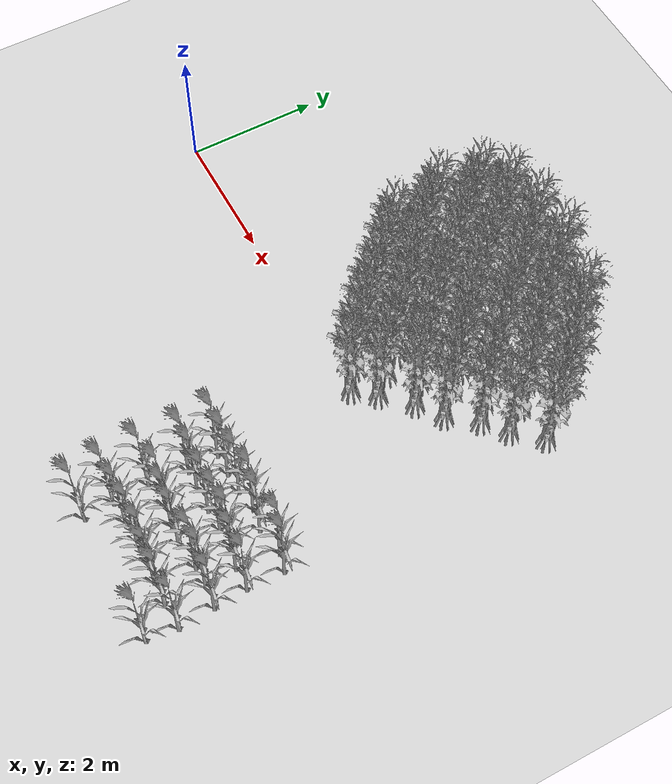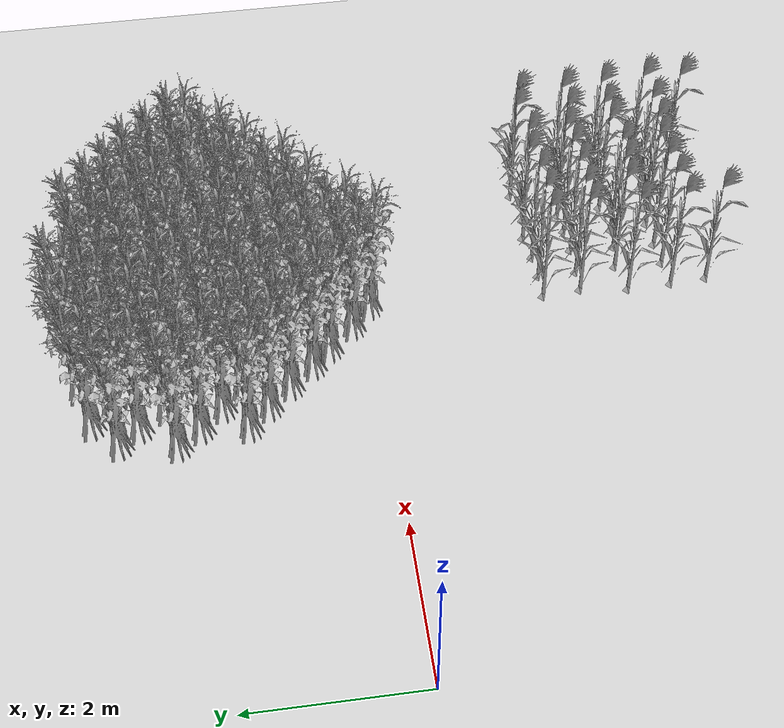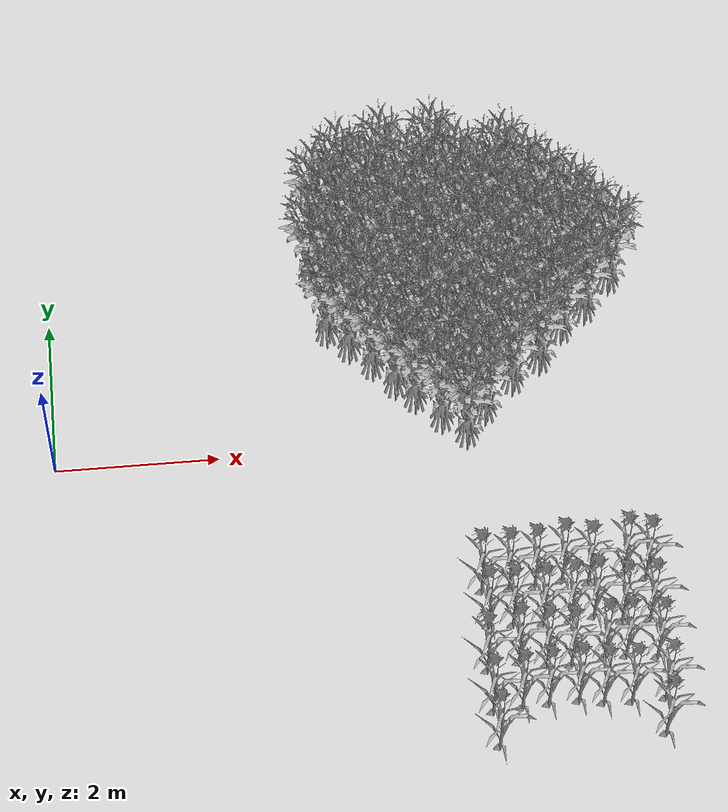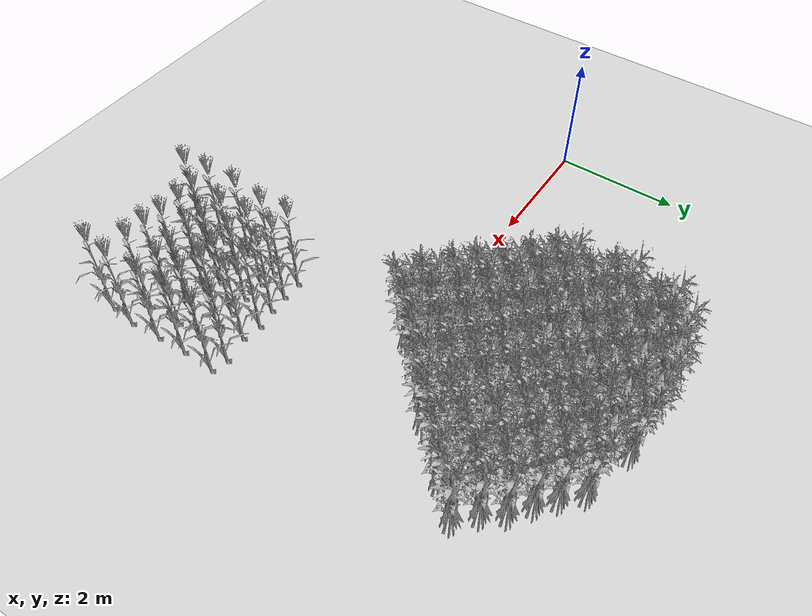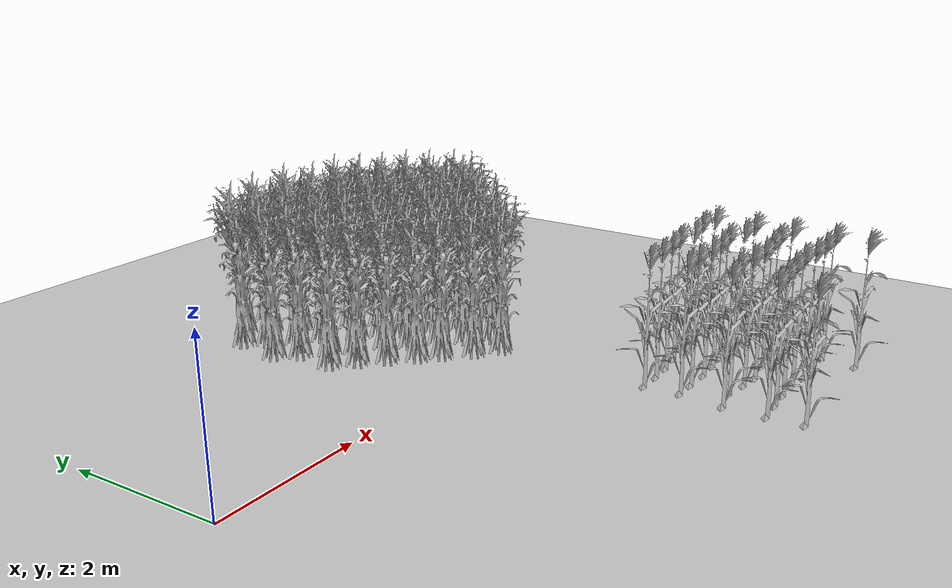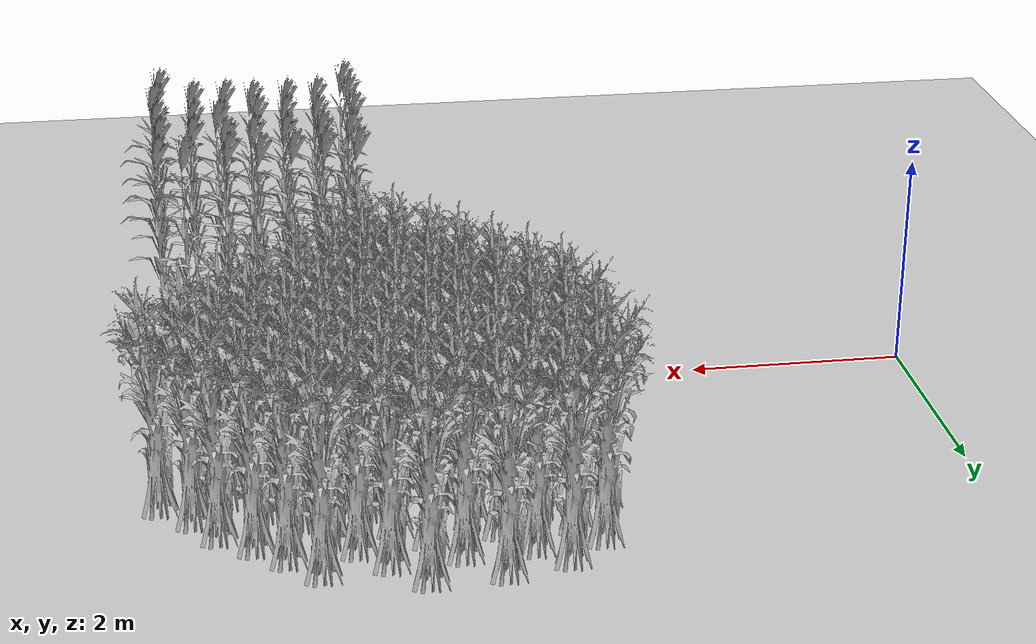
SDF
<sdf version="1.7">
 <world name="farmland_world">
  <model name="ground_plane">
   <static>1</static>
   <link name="link">
    <collision name="collision">
     <geometry><plane><normal>0 0 1</normal><size>40.0 40.0</size></plane></geometry>
     <surface><friction><ode><mu>100</mu><mu2>50</mu2></ode></friction></surface>
    </collision>
    <visual name="visual">
     <cast_shadows>0</cast_shadows>
     <geometry><plane><normal>0 0 1</normal><size>40.0 40.0</size></plane></geometry>
     <material>
      <script><uri>file://media/materials/scripts/gazebo.material</uri><name>Gazebo/Grey</name></script>
     </material>
    </visual>
   </link>
  </model>
  <model name="tree_2_0">
   <static>1</static>
   <link name="link">
    <collision name="collision">
     <geometry><mesh><uri>model://Corn/corn_5p.obj</uri><scale>1 1 1</scale></mesh></geometry>
     <surface><friction><ode><mu>100</mu><mu2>50</mu2></ode></friction></surface>
    </collision>
    <visual name="visual">
     <geometry><mesh><uri>model://Corn/corn_5p.obj</uri><scale>1 1 1</scale></mesh></geometry>
    </visual>
   </link>
   <pose>5.043748606266506 0.012698637609376352 0 0 0 0</pose>
  </model>
  <model name="tree_2_1">
   <static>1</static>
   <link name="link">
    <collision name="collision">
     <geometry><mesh><uri>model://Corn/corn_5p.obj</uri><scale>1 1 1</scale></mesh></geometry>
     <surface><friction><ode><mu>100</mu><mu2>50</mu2></ode></friction></surface>
    </collision>
    <visual name="visual">
     <geometry><mesh><uri>model://Corn/corn_5p.obj</uri><scale>1 1 1</scale></mesh></geometry>
    </visual>
   </link>
   <pose>4.75956731364243 0.24568094177987185 0 0 0 0</pose>
  </model>
  <model name="tree_2_2">
   <static>1</static>
   <link name="link">
    <collision name="collision">
     <geometry><mesh><uri>model://Corn/corn_5p.obj</uri><scale>1 1 1</scale></mesh></geometry>
     <surface><friction><ode><mu>100</mu><mu2>50</mu2></ode></friction></surface>
    </collision>
    <visual name="visual">
     <geometry><mesh><uri>model://Corn/corn_5p.obj</uri><scale>1 1 1</scale></mesh></geometry>
    </visual>
   </link>
   <pose>4.460421943026819 0.5468915827871715 0 0 0 0</pose>
  </model>
  <model name="tree_2_3">
   <static>1</static>
   <link name="link">
    <collision name="collision">
     <geometry><mesh><uri>model://Corn/corn_5p.obj</uri><scale>1 1 1</scale></mesh></geometry>
     <surface><friction><ode><mu>100</mu><mu2>50</mu2></ode></friction></surface>
    </collision>
    <visual name="visual">
     <geometry><mesh><uri>model://Corn/corn_5p.obj</uri><scale>1 1 1</scale></mesh></geometry>
    </visual>
   </link>
   <pose>4.231845531452798 0.7637563604710286 0 0 0 0</pose>
  </model>
  <model name="tree_2_4">
   <static>1</static>
   <link name="link">
    <collision name="collision">
     <geometry><mesh><uri>model://Corn/corn_5p.obj</uri><scale>1 1 1</scale></mesh></geometry>
     <surface><friction><ode><mu>100</mu><mu2>50</mu2></ode></friction></surface>
    </collision>
    <visual name="visual">
     <geometry><mesh><uri>model://Corn/corn_5p.obj</uri><scale>1 1 1</scale></mesh></geometry>
    </visual>
   </link>
   <pose>3.976620042952896 1.0468861932850682 0 0 0 0</pose>
  </model>
  <model name="tree_2_5">
   <static>1</static>
   <link name="link">
    <collision name="collision">
     <geometry><mesh><uri>model://Corn/corn_5p.obj</uri><scale>1 1 1</scale></mesh></geometry>
     <surface><friction><ode><mu>100</mu><mu2>50</mu2></ode></friction></surface>
    </collision>
    <visual name="visual">
     <geometry><mesh><uri>model://Corn/corn_5p.obj</uri><scale>1 1 1</scale></mesh></geometry>
    </visual>
   </link>
   <pose>3.7075180982488405 1.313542585969232 0 0 0 0</pose>
  </model>
  <model name="tree_2_6">
   <static>1</static>
   <link name="link">
    <collision name="collision">
     <geometry><mesh><uri>model://Corn/corn_5p.obj</uri><scale>1 1 1</scale></mesh></geometry>
     <surface><friction><ode><mu>100</mu><mu2>50</mu2></ode></friction></surface>
    </collision>
    <visual name="visual">
     <geometry><mesh><uri>model://Corn/corn_5p.obj</uri><scale>1 1 1</scale></mesh></geometry>
    </visual>
   </link>
   <pose>3.4529204111559277 1.5609485227874136 0 0 0 0</pose>
  </model>
  <model name="tree_2_40">
   <static>1</static>
   <link name="link">
    <collision name="collision">
     <geometry><mesh><uri>model://Corn/corn_5p.obj</uri><scale>1 1 1</scale></mesh></geometry>
     <surface><friction><ode><mu>100</mu><mu2>50</mu2></ode></friction></surface>
    </collision>
    <visual name="visual">
     <geometry><mesh><uri>model://Corn/corn_5p.obj</uri><scale>1 1 1</scale></mesh></geometry>
    </visual>
   </link>
   <pose>6.028388113042518 0.9541640676287072 0 0 0 0</pose>
  </model>
  <model name="tree_2_41">
   <static>1</static>
   <link name="link">
    <collision name="collision">
     <geometry><mesh><uri>model://Corn/corn_5p.obj</uri><scale>1 1 1</scale></mesh></geometry>
     <surface><friction><ode><mu>100</mu><mu2>50</mu2></ode></friction></surface>
    </collision>
    <visual name="visual">
     <geometry><mesh><uri>model://Corn/corn_5p.obj</uri><scale>1 1 1</scale></mesh></geometry>
    </visual>
   </link>
   <pose>5.696229317378388 1.2897160327841732 0 0 0 0</pose>
  </model>
  <model name="tree_2_42">
   <static>1</static>
   <link name="link">
    <collision name="collision">
     <geometry><mesh><uri>model://Corn/corn_5p.obj</uri><scale>1 1 1</scale></mesh></geometry>
     <surface><friction><ode><mu>100</mu><mu2>50</mu2></ode></friction></surface>
    </collision>
    <visual name="visual">
     <geometry><mesh><uri>model://Corn/corn_5p.obj</uri><scale>1 1 1</scale></mesh></geometry>
    </visual>
   </link>
   <pose>5.504497775282919 1.5190798610110132 0 0 0 0</pose>
  </model>
  <model name="tree_2_43">
   <static>1</static>
   <link name="link">
    <collision name="collision">
     <geometry><mesh><uri>model://Corn/corn_5p.obj</uri><scale>1 1 1</scale></mesh></geometry>
     <surface><friction><ode><mu>100</mu><mu2>50</mu2></ode></friction></surface>
    </collision>
    <visual name="visual">
     <geometry><mesh><uri>model://Corn/corn_5p.obj</uri><scale>1 1 1</scale></mesh></geometry>
    </visual>
   </link>
   <pose>5.23853396785096 1.7368655205092516 0 0 0 0</pose>
  </model>
  <model name="tree_2_44">
   <static>1</static>
   <link name="link">
    <collision name="collision">
     <geometry><mesh><uri>model://Corn/corn_5p.obj</uri><scale>1 1 1</scale></mesh></geometry>
     <surface><friction><ode><mu>100</mu><mu2>50</mu2></ode></friction></surface>
    </collision>
    <visual name="visual">
     <geometry><mesh><uri>model://Corn/corn_5p.obj</uri><scale>1 1 1</scale></mesh></geometry>
    </visual>
   </link>
   <pose>4.971205356184604 1.987103195072003 0 0 0 0</pose>
  </model>
  <model name="tree_2_45">
   <static>1</static>
   <link name="link">
    <collision name="collision">
     <geometry><mesh><uri>model://Corn/corn_5p.obj</uri><scale>1 1 1</scale></mesh></geometry>
     <surface><friction><ode><mu>100</mu><mu2>50</mu2></ode></friction></surface>
    </collision>
    <visual name="visual">
     <geometry><mesh><uri>model://Corn/corn_5p.obj</uri><scale>1 1 1</scale></mesh></geometry>
    </visual>
   </link>
   <pose>4.678248088656121 2.255392209830677 0 0 0 0</pose>
  </model>
  <model name="tree_2_46">
   <static>1</static>
   <link name="link">
    <collision name="collision">
     <geometry><mesh><uri>model://Corn/corn_5p.obj</uri><scale>1 1 1</scale></mesh></geometry>
     <surface><friction><ode><mu>100</mu><mu2>50</mu2></ode></friction></surface>
    </collision>
    <visual name="visual">
     <geometry><mesh><uri>model://Corn/corn_5p.obj</uri><scale>1 1 1</scale></mesh></geometry>
    </visual>
   </link>
   <pose>4.453038371911183 2.5605945778936716 0 0 0 0</pose>
  </model>
  <model name="tree_2_47">
   <static>1</static>
   <link name="link">
    <collision name="collision">
     <geometry><mesh><uri>model://Corn/corn_5p.obj</uri><scale>1 1 1</scale></mesh></geometry>
     <surface><friction><ode><mu>100</mu><mu2>50</mu2></ode></friction></surface>
    </collision>
    <visual name="visual">
     <geometry><mesh><uri>model://Corn/corn_5p.obj</uri><scale>1 1 1</scale></mesh></geometry>
    </visual>
   </link>
   <pose>4.238533251155412 2.7592199334929988 0 0 0 0</pose>
  </model>
  <model name="tree_2_48">
   <static>1</static>
   <link name="link">
    <collision name="collision">
     <geometry><mesh><uri>model://Corn/corn_5p.obj</uri><scale>1 1 1</scale></mesh></geometry>
     <surface><friction><ode><mu>100</mu><mu2>50</mu2></ode></friction></surface>
    </collision>
    <visual name="visual">
     <geometry><mesh><uri>model://Corn/corn_5p.obj</uri><scale>1 1 1</scale></mesh></geometry>
    </visual>
   </link>
   <pose>3.9837428285086616 3.0683633686979657 0 0 0 0</pose>
  </model>
  <model name="tree_2_49">
   <static>1</static>
   <link name="link">
    <collision name="collision">
     <geometry><mesh><uri>model://Corn/corn_5p.obj</uri><scale>1 1 1</scale></mesh></geometry>
     <surface><friction><ode><mu>100</mu><mu2>50</mu2></ode></friction></surface>
    </collision>
    <visual name="visual">
     <geometry><mesh><uri>model://Corn/corn_5p.obj</uri><scale>1 1 1</scale></mesh></geometry>
    </visual>
   </link>
   <pose>3.726110100726963 3.2937605684750215 0 0 0 0</pose>
  </model>
  <model name="tree_2_80">
   <static>1</static>
   <link name="link">
    <collision name="collision">
     <geometry><mesh><uri>model://Corn/corn_5p.obj</uri><scale>1 1 1</scale></mesh></geometry>
     <surface><friction><ode><mu>100</mu><mu2>50</mu2></ode></friction></surface>
    </collision>
    <visual name="visual">
     <geometry><mesh><uri>model://Corn/corn_5p.obj</uri><scale>1 1 1</scale></mesh></geometry>
    </visual>
   </link>
   <pose>7.000657069994379 2.0129936857948634 0 0 0 0</pose>
  </model>
  <model name="tree_2_81">
   <static>1</static>
   <link name="link">
    <collision name="collision">
     <geometry><mesh><uri>model://Corn/corn_5p.obj</uri><scale>1 1 1</scale></mesh></geometry>
     <surface><friction><ode><mu>100</mu><mu2>50</mu2></ode></friction></surface>
    </collision>
    <visual name="visual">
     <geometry><mesh><uri>model://Corn/corn_5p.obj</uri><scale>1 1 1</scale></mesh></geometry>
    </visual>
   </link>
   <pose>6.722198239006003 2.2701727378516168 0 0 0 0</pose>
  </model>
  <model name="tree_2_82">
   <static>1</static>
   <link name="link">
    <collision name="collision">
     <geometry><mesh><uri>model://Corn/corn_5p.obj</uri><scale>1 1 1</scale></mesh></geometry>
     <surface><friction><ode><mu>100</mu><mu2>50</mu2></ode></friction></surface>
    </collision>
    <visual name="visual">
     <geometry><mesh><uri>model://Corn/corn_5p.obj</uri><scale>1 1 1</scale></mesh></geometry>
    </visual>
   </link>
   <pose>6.520718323070337 2.548804115384206 0 0 0 0</pose>
  </model>
  <model name="tree_2_83">
   <static>1</static>
   <link name="link">
    <collision name="collision">
     <geometry><mesh><uri>model://Corn/corn_5p.obj</uri><scale>1 1 1</scale></mesh></geometry>
     <surface><friction><ode><mu>100</mu><mu2>50</mu2></ode></friction></surface>
    </collision>
    <visual name="visual">
     <geometry><mesh><uri>model://Corn/corn_5p.obj</uri><scale>1 1 1</scale></mesh></geometry>
    </visual>
   </link>
   <pose>6.2324708124007 2.7638768683860153 0 0 0 0</pose>
  </model>
  <model name="tree_2_84">
   <static>1</static>
   <link name="link">
    <collision name="collision">
     <geometry><mesh><uri>model://Corn/corn_5p.obj</uri><scale>1 1 1</scale></mesh></geometry>
     <surface><friction><ode><mu>100</mu><mu2>50</mu2></ode></friction></surface>
    </collision>
    <visual name="visual">
     <geometry><mesh><uri>model://Corn/corn_5p.obj</uri><scale>1 1 1</scale></mesh></geometry>
    </visual>
   </link>
   <pose>5.979146030354563 2.9835734368422706 0 0 0 0</pose>
  </model>
  <model name="tree_2_85">
   <static>1</static>
   <link name="link">
    <collision name="collision">
     <geometry><mesh><uri>model://Corn/corn_5p.obj</uri><scale>1 1 1</scale></mesh></geometry>
     <surface><friction><ode><mu>100</mu><mu2>50</mu2></ode></friction></surface>
    </collision>
    <visual name="visual">
     <geometry><mesh><uri>model://Corn/corn_5p.obj</uri><scale>1 1 1</scale></mesh></geometry>
    </visual>
   </link>
   <pose>5.718983313373528 3.244093634182256 0 0 0 0</pose>
  </model>
  <model name="tree_2_240">
   <static>1</static>
   <link name="link">
    <collision name="collision">
     <geometry><mesh><uri>model://Corn/corn_5p.obj</uri><scale>1 1 1</scale></mesh></geometry>
     <surface><friction><ode><mu>100</mu><mu2>50</mu2></ode></friction></surface>
    </collision>
    <visual name="visual">
     <geometry><mesh><uri>model://Corn/corn_5p.obj</uri><scale>1 1 1</scale></mesh></geometry>
    </visual>
   </link>
   <pose>5.294942314268361 0.31436960165316447 0 0 0 0</pose>
  </model>
  <model name="tree_2_241">
   <static>1</static>
   <link name="link">
    <collision name="collision">
     <geometry><mesh><uri>model://Corn/corn_5p.obj</uri><scale>1 1 1</scale></mesh></geometry>
     <surface><friction><ode><mu>100</mu><mu2>50</mu2></ode></friction></surface>
    </collision>
    <visual name="visual">
     <geometry><mesh><uri>model://Corn/corn_5p.obj</uri><scale>1 1 1</scale></mesh></geometry>
    </visual>
   </link>
   <pose>5.060643168754194 0.5886856260967881 0 0 0 0</pose>
  </model>
  <model name="tree_2_242">
   <static>1</static>
   <link name="link">
    <collision name="collision">
     <geometry><mesh><uri>model://Corn/corn_5p.obj</uri><scale>1 1 1</scale></mesh></geometry>
     <surface><friction><ode><mu>100</mu><mu2>50</mu2></ode></friction></surface>
    </collision>
    <visual name="visual">
     <geometry><mesh><uri>model://Corn/corn_5p.obj</uri><scale>1 1 1</scale></mesh></geometry>
    </visual>
   </link>
   <pose>4.846326087759779 0.8722171995250338 0 0 0 0</pose>
  </model>
  <model name="tree_2_243">
   <static>1</static>
   <link name="link">
    <collision name="collision">
     <geometry><mesh><uri>model://Corn/corn_5p.obj</uri><scale>1 1 1</scale></mesh></geometry>
     <surface><friction><ode><mu>100</mu><mu2>50</mu2></ode></friction></surface>
    </collision>
    <visual name="visual">
     <geometry><mesh><uri>model://Corn/corn_5p.obj</uri><scale>1 1 1</scale></mesh></geometry>
    </visual>
   </link>
   <pose>4.539584951514254 1.119566487913283 0 0 0 0</pose>
  </model>
  <model name="tree_2_244">
   <static>1</static>
   <link name="link">
    <collision name="collision">
     <geometry><mesh><uri>model://Corn/corn_5p.obj</uri><scale>1 1 1</scale></mesh></geometry>
     <surface><friction><ode><mu>100</mu><mu2>50</mu2></ode></friction></surface>
    </collision>
    <visual name="visual">
     <geometry><mesh><uri>model://Corn/corn_5p.obj</uri><scale>1 1 1</scale></mesh></geometry>
    </visual>
   </link>
   <pose>4.323568305332126 1.3703721090528371 0 0 0 0</pose>
  </model>
  <model name="tree_2_245">
   <static>1</static>
   <link name="link">
    <collision name="collision">
     <geometry><mesh><uri>model://Corn/corn_5p.obj</uri><scale>1 1 1</scale></mesh></geometry>
     <surface><friction><ode><mu>100</mu><mu2>50</mu2></ode></friction></surface>
    </collision>
    <visual name="visual">
     <geometry><mesh><uri>model://Corn/corn_5p.obj</uri><scale>1 1 1</scale></mesh></geometry>
    </visual>
   </link>
   <pose>3.9986804921635564 1.5987363364715272 0 0 0 0</pose>
  </model>
  <model name="tree_2_246">
   <static>1</static>
   <link name="link">
    <collision name="collision">
     <geometry><mesh><uri>model://Corn/corn_5p.obj</uri><scale>1 1 1</scale></mesh></geometry>
     <surface><friction><ode><mu>100</mu><mu2>50</mu2></ode></friction></surface>
    </collision>
    <visual name="visual">
     <geometry><mesh><uri>model://Corn/corn_5p.obj</uri><scale>1 1 1</scale></mesh></geometry>
    </visual>
   </link>
   <pose>3.765671900892521 1.8306087010937626 0 0 0 0</pose>
  </model>
  <model name="tree_2_247">
   <static>1</static>
   <link name="link">
    <collision name="collision">
     <geometry><mesh><uri>model://Corn/corn_5p.obj</uri><scale>1 1 1</scale></mesh></geometry>
     <surface><friction><ode><mu>100</mu><mu2>50</mu2></ode></friction></surface>
    </collision>
    <visual name="visual">
     <geometry><mesh><uri>model://Corn/corn_5p.obj</uri><scale>1 1 1</scale></mesh></geometry>
    </visual>
   </link>
   <pose>3.5021229078996567 2.090846570355696 0 0 0 0</pose>
  </model>
  <model name="tree_2_248">
   <static>1</static>
   <link name="link">
    <collision name="collision">
     <geometry><mesh><uri>model://Corn/corn_5p.obj</uri><scale>1 1 1</scale></mesh></geometry>
     <surface><friction><ode><mu>100</mu><mu2>50</mu2></ode></friction></surface>
    </collision>
    <visual name="visual">
     <geometry><mesh><uri>model://Corn/corn_5p.obj</uri><scale>1 1 1</scale></mesh></geometry>
    </visual>
   </link>
   <pose>3.300474067678995 2.3598108463817495 0 0 0 0</pose>
  </model>
  <model name="tree_2_280">
   <static>1</static>
   <link name="link">
    <collision name="collision">
     <geometry><mesh><uri>model://Corn/corn_5p.obj</uri><scale>1 1 1</scale></mesh></geometry>
     <surface><friction><ode><mu>100</mu><mu2>50</mu2></ode></friction></surface>
    </collision>
    <visual name="visual">
     <geometry><mesh><uri>model://Corn/corn_5p.obj</uri><scale>1 1 1</scale></mesh></geometry>
    </visual>
   </link>
   <pose>5.667108332484155 0.6974977411553743 0 0 0 0</pose>
  </model>
  <model name="tree_2_281">
   <static>1</static>
   <link name="link">
    <collision name="collision">
     <geometry><mesh><uri>model://Corn/corn_5p.obj</uri><scale>1 1 1</scale></mesh></geometry>
     <surface><friction><ode><mu>100</mu><mu2>50</mu2></ode></friction></surface>
    </collision>
    <visual name="visual">
     <geometry><mesh><uri>model://Corn/corn_5p.obj</uri><scale>1 1 1</scale></mesh></geometry>
    </visual>
   </link>
   <pose>5.3913404407985865 0.9206189268846922 0 0 0 0</pose>
  </model>
  <model name="tree_2_282">
   <static>1</static>
   <link name="link">
    <collision name="collision">
     <geometry><mesh><uri>model://Corn/corn_5p.obj</uri><scale>1 1 1</scale></mesh></geometry>
     <surface><friction><ode><mu>100</mu><mu2>50</mu2></ode></friction></surface>
    </collision>
    <visual name="visual">
     <geometry><mesh><uri>model://Corn/corn_5p.obj</uri><scale>1 1 1</scale></mesh></geometry>
    </visual>
   </link>
   <pose>5.12111484447519 1.1529588309792216 0 0 0 0</pose>
  </model>
  <model name="tree_2_283">
   <static>1</static>
   <link name="link">
    <collision name="collision">
     <geometry><mesh><uri>model://Corn/corn_5p.obj</uri><scale>1 1 1</scale></mesh></geometry>
     <surface><friction><ode><mu>100</mu><mu2>50</mu2></ode></friction></surface>
    </collision>
    <visual name="visual">
     <geometry><mesh><uri>model://Corn/corn_5p.obj</uri><scale>1 1 1</scale></mesh></geometry>
    </visual>
   </link>
   <pose>4.852665875639321 1.4787934209805522 0 0 0 0</pose>
  </model>
  <model name="tree_2_284">
   <static>1</static>
   <link name="link">
    <collision name="collision">
     <geometry><mesh><uri>model://Corn/corn_5p.obj</uri><scale>1 1 1</scale></mesh></geometry>
     <surface><friction><ode><mu>100</mu><mu2>50</mu2></ode></friction></surface>
    </collision>
    <visual name="visual">
     <geometry><mesh><uri>model://Corn/corn_5p.obj</uri><scale>1 1 1</scale></mesh></geometry>
    </visual>
   </link>
   <pose>4.616177025690678 1.6770685655986504 0 0 0 0</pose>
  </model>
  <model name="tree_2_285">
   <static>1</static>
   <link name="link">
    <collision name="collision">
     <geometry><mesh><uri>model://Corn/corn_5p.obj</uri><scale>1 1 1</scale></mesh></geometry>
     <surface><friction><ode><mu>100</mu><mu2>50</mu2></ode></friction></surface>
    </collision>
    <visual name="visual">
     <geometry><mesh><uri>model://Corn/corn_5p.obj</uri><scale>1 1 1</scale></mesh></geometry>
    </visual>
   </link>
   <pose>4.39963152732525 1.9070458890389301 0 0 0 0</pose>
  </model>
  <model name="tree_2_286">
   <static>1</static>
   <link name="link">
    <collision name="collision">
     <geometry><mesh><uri>model://Corn/corn_5p.obj</uri><scale>1 1 1</scale></mesh></geometry>
     <surface><friction><ode><mu>100</mu><mu2>50</mu2></ode></friction></surface>
    </collision>
    <visual name="visual">
     <geometry><mesh><uri>model://Corn/corn_5p.obj</uri><scale>1 1 1</scale></mesh></geometry>
    </visual>
   </link>
   <pose>4.107161041302192 2.2521851633689565 0 0 0 0</pose>
  </model>
  <model name="tree_2_287">
   <static>1</static>
   <link name="link">
    <collision name="collision">
     <geometry><mesh><uri>model://Corn/corn_5p.obj</uri><scale>1 1 1</scale></mesh></geometry>
     <surface><friction><ode><mu>100</mu><mu2>50</mu2></ode></friction></surface>
    </collision>
    <visual name="visual">
     <geometry><mesh><uri>model://Corn/corn_5p.obj</uri><scale>1 1 1</scale></mesh></geometry>
    </visual>
   </link>
   <pose>3.8294573832363272 2.4654402592464546 0 0 0 0</pose>
  </model>
  <model name="tree_2_288">
   <static>1</static>
   <link name="link">
    <collision name="collision">
     <geometry><mesh><uri>model://Corn/corn_5p.obj</uri><scale>1 1 1</scale></mesh></geometry>
     <surface><friction><ode><mu>100</mu><mu2>50</mu2></ode></friction></surface>
    </collision>
    <visual name="visual">
     <geometry><mesh><uri>model://Corn/corn_5p.obj</uri><scale>1 1 1</scale></mesh></geometry>
    </visual>
   </link>
   <pose>3.6078658827066348 2.7676525818330338 0 0 0 0</pose>
  </model>
  <model name="tree_2_289">
   <static>1</static>
   <link name="link">
    <collision name="collision">
     <geometry><mesh><uri>model://Corn/corn_5p.obj</uri><scale>1 1 1</scale></mesh></geometry>
     <surface><friction><ode><mu>100</mu><mu2>50</mu2></ode></friction></surface>
    </collision>
    <visual name="visual">
     <geometry><mesh><uri>model://Corn/corn_5p.obj</uri><scale>1 1 1</scale></mesh></geometry>
    </visual>
   </link>
   <pose>3.408005221352631 3.0000669541445704 0 0 0 0</pose>
  </model>
  <model name="tree_2_320">
   <static>1</static>
   <link name="link">
    <collision name="collision">
     <geometry><mesh><uri>model://Corn/corn_5p.obj</uri><scale>1 1 1</scale></mesh></geometry>
     <surface><friction><ode><mu>100</mu><mu2>50</mu2></ode></friction></surface>
    </collision>
    <visual name="visual">
     <geometry><mesh><uri>model://Corn/corn_5p.obj</uri><scale>1 1 1</scale></mesh></geometry>
    </visual>
   </link>
   <pose>6.338366848422433 1.3567166332836473 0 0 0 0</pose>
  </model>
  <model name="tree_2_321">
   <static>1</static>
   <link name="link">
    <collision name="collision">
     <geometry><mesh><uri>model://Corn/corn_5p.obj</uri><scale>1 1 1</scale></mesh></geometry>
     <surface><friction><ode><mu>100</mu><mu2>50</mu2></ode></friction></surface>
    </collision>
    <visual name="visual">
     <geometry><mesh><uri>model://Corn/corn_5p.obj</uri><scale>1 1 1</scale></mesh></geometry>
    </visual>
   </link>
   <pose>6.109718337755973 1.548137722534008 0 0 0 0</pose>
  </model>
  <model name="tree_2_322">
   <static>1</static>
   <link name="link">
    <collision name="collision">
     <geometry><mesh><uri>model://Corn/corn_5p.obj</uri><scale>1 1 1</scale></mesh></geometry>
     <surface><friction><ode><mu>100</mu><mu2>50</mu2></ode></friction></surface>
    </collision>
    <visual name="visual">
     <geometry><mesh><uri>model://Corn/corn_5p.obj</uri><scale>1 1 1</scale></mesh></geometry>
    </visual>
   </link>
   <pose>5.804855446969796 1.8550329044415614 0 0 0 0</pose>
  </model>
  <model name="tree_2_323">
   <static>1</static>
   <link name="link">
    <collision name="collision">
     <geometry><mesh><uri>model://Corn/corn_5p.obj</uri><scale>1 1 1</scale></mesh></geometry>
     <surface><friction><ode><mu>100</mu><mu2>50</mu2></ode></friction></surface>
    </collision>
    <visual name="visual">
     <geometry><mesh><uri>model://Corn/corn_5p.obj</uri><scale>1 1 1</scale></mesh></geometry>
    </visual>
   </link>
   <pose>5.527362585658667 2.1336716175333494 0 0 0 0</pose>
  </model>
  <model name="tree_2_324">
   <static>1</static>
   <link name="link">
    <collision name="collision">
     <geometry><mesh><uri>model://Corn/corn_5p.obj</uri><scale>1 1 1</scale></mesh></geometry>
     <surface><friction><ode><mu>100</mu><mu2>50</mu2></ode></friction></surface>
    </collision>
    <visual name="visual">
     <geometry><mesh><uri>model://Corn/corn_5p.obj</uri><scale>1 1 1</scale></mesh></geometry>
    </visual>
   </link>
   <pose>5.284451715257927 2.320411741051827 0 0 0 0</pose>
  </model>
  <model name="tree_2_325">
   <static>1</static>
   <link name="link">
    <collision name="collision">
     <geometry><mesh><uri>model://Corn/corn_5p.obj</uri><scale>1 1 1</scale></mesh></geometry>
     <surface><friction><ode><mu>100</mu><mu2>50</mu2></ode></friction></surface>
    </collision>
    <visual name="visual">
     <geometry><mesh><uri>model://Corn/corn_5p.obj</uri><scale>1 1 1</scale></mesh></geometry>
    </visual>
   </link>
   <pose>5.090658463351722 2.6120011895682183 0 0 0 0</pose>
  </model>
  <model name="tree_2_326">
   <static>1</static>
   <link name="link">
    <collision name="collision">
     <geometry><mesh><uri>model://Corn/corn_5p.obj</uri><scale>1 1 1</scale></mesh></geometry>
     <surface><friction><ode><mu>100</mu><mu2>50</mu2></ode></friction></surface>
    </collision>
    <visual name="visual">
     <geometry><mesh><uri>model://Corn/corn_5p.obj</uri><scale>1 1 1</scale></mesh></geometry>
    </visual>
   </link>
   <pose>4.820132134440604 2.835811972435247 0 0 0 0</pose>
  </model>
  <model name="tree_2_327">
   <static>1</static>
   <link name="link">
    <collision name="collision">
     <geometry><mesh><uri>model://Corn/corn_5p.obj</uri><scale>1 1 1</scale></mesh></geometry>
     <surface><friction><ode><mu>100</mu><mu2>50</mu2></ode></friction></surface>
    </collision>
    <visual name="visual">
     <geometry><mesh><uri>model://Corn/corn_5p.obj</uri><scale>1 1 1</scale></mesh></geometry>
    </visual>
   </link>
   <pose>4.566834726818778 3.0993835119419706 0 0 0 0</pose>
  </model>
  <model name="tree_2_328">
   <static>1</static>
   <link name="link">
    <collision name="collision">
     <geometry><mesh><uri>model://Corn/corn_5p.obj</uri><scale>1 1 1</scale></mesh></geometry>
     <surface><friction><ode><mu>100</mu><mu2>50</mu2></ode></friction></surface>
    </collision>
    <visual name="visual">
     <geometry><mesh><uri>model://Corn/corn_5p.obj</uri><scale>1 1 1</scale></mesh></geometry>
    </visual>
   </link>
   <pose>4.25996314306833 3.428421218835945 0 0 0 0</pose>
  </model>
  <model name="tree_2_360">
   <static>1</static>
   <link name="link">
    <collision name="collision">
     <geometry><mesh><uri>model://Corn/corn_5p.obj</uri><scale>1 1 1</scale></mesh></geometry>
     <surface><friction><ode><mu>100</mu><mu2>50</mu2></ode></friction></surface>
    </collision>
    <visual name="visual">
     <geometry><mesh><uri>model://Corn/corn_5p.obj</uri><scale>1 1 1</scale></mesh></geometry>
    </visual>
   </link>
   <pose>6.660918116592317 1.6234294312931281 0 0 0 0</pose>
  </model>
  <model name="tree_2_361">
   <static>1</static>
   <link name="link">
    <collision name="collision">
     <geometry><mesh><uri>model://Corn/corn_5p.obj</uri><scale>1 1 1</scale></mesh></geometry>
     <surface><friction><ode><mu>100</mu><mu2>50</mu2></ode></friction></surface>
    </collision>
    <visual name="visual">
     <geometry><mesh><uri>model://Corn/corn_5p.obj</uri><scale>1 1 1</scale></mesh></geometry>
    </visual>
   </link>
   <pose>6.420403535258286 1.9697698368653869 0 0 0 0</pose>
  </model>
  <model name="tree_2_362">
   <static>1</static>
   <link name="link">
    <collision name="collision">
     <geometry><mesh><uri>model://Corn/corn_5p.obj</uri><scale>1 1 1</scale></mesh></geometry>
     <surface><friction><ode><mu>100</mu><mu2>50</mu2></ode></friction></surface>
    </collision>
    <visual name="visual">
     <geometry><mesh><uri>model://Corn/corn_5p.obj</uri><scale>1 1 1</scale></mesh></geometry>
    </visual>
   </link>
   <pose>6.137232644408174 2.226399194983378 0 0 0 0</pose>
  </model>
  <model name="tree_2_363">
   <static>1</static>
   <link name="link">
    <collision name="collision">
     <geometry><mesh><uri>model://Corn/corn_5p.obj</uri><scale>1 1 1</scale></mesh></geometry>
     <surface><friction><ode><mu>100</mu><mu2>50</mu2></ode></friction></surface>
    </collision>
    <visual name="visual">
     <geometry><mesh><uri>model://Corn/corn_5p.obj</uri><scale>1 1 1</scale></mesh></geometry>
    </visual>
   </link>
   <pose>5.851221818484744 2.415714833125657 0 0 0 0</pose>
  </model>
  <model name="tree_2_364">
   <static>1</static>
   <link name="link">
    <collision name="collision">
     <geometry><mesh><uri>model://Corn/corn_5p.obj</uri><scale>1 1 1</scale></mesh></geometry>
     <surface><friction><ode><mu>100</mu><mu2>50</mu2></ode></friction></surface>
    </collision>
    <visual name="visual">
     <geometry><mesh><uri>model://Corn/corn_5p.obj</uri><scale>1 1 1</scale></mesh></geometry>
    </visual>
   </link>
   <pose>5.614772119637968 2.7185830122441828 0 0 0 0</pose>
  </model>
  <model name="tree_2_365">
   <static>1</static>
   <link name="link">
    <collision name="collision">
     <geometry><mesh><uri>model://Corn/corn_5p.obj</uri><scale>1 1 1</scale></mesh></geometry>
     <surface><friction><ode><mu>100</mu><mu2>50</mu2></ode></friction></surface>
    </collision>
    <visual name="visual">
     <geometry><mesh><uri>model://Corn/corn_5p.obj</uri><scale>1 1 1</scale></mesh></geometry>
    </visual>
   </link>
   <pose>5.409289091633081 2.9130804077189945 0 0 0 0</pose>
  </model>
  <model name="tree_2_366">
   <static>1</static>
   <link name="link">
    <collision name="collision">
     <geometry><mesh><uri>model://Corn/corn_5p.obj</uri><scale>1 1 1</scale></mesh></geometry>
     <surface><friction><ode><mu>100</mu><mu2>50</mu2></ode></friction></surface>
    </collision>
    <visual name="visual">
     <geometry><mesh><uri>model://Corn/corn_5p.obj</uri><scale>1 1 1</scale></mesh></geometry>
    </visual>
   </link>
   <pose>5.169114488179237 3.162700331285592 0 0 0 0</pose>
  </model>
  <model name="tree_2_367">
   <static>1</static>
   <link name="link">
    <collision name="collision">
     <geometry><mesh><uri>model://Corn/corn_5p.obj</uri><scale>1 1 1</scale></mesh></geometry>
     <surface><friction><ode><mu>100</mu><mu2>50</mu2></ode></friction></surface>
    </collision>
    <visual name="visual">
     <geometry><mesh><uri>model://Corn/corn_5p.obj</uri><scale>1 1 1</scale></mesh></geometry>
    </visual>
   </link>
   <pose>4.883719202656818 3.450961572393078 0 0 0 0</pose>
  </model>
  <model name="tree_3_0">
   <static>1</static>
   <link name="link">
    <collision name="collision">
     <geometry><mesh><uri>model://Corn_low_poly/corn.obj</uri><scale>1 1 1</scale></mesh></geometry>
     <surface><friction><ode><mu>100</mu><mu2>50</mu2></ode></friction></surface>
    </collision>
    <visual name="visual">
     <geometry><mesh><uri>model://Corn_low_poly/corn.obj</uri><scale>1 1 1</scale></mesh></geometry>
    </visual>
   </link>
   <pose>5.010614310858931 -2.0341990094078017 0 0 0 0</pose>
  </model>
  <model name="tree_3_1">
   <static>1</static>
   <link name="link">
    <collision name="collision">
     <geometry><mesh><uri>model://Corn_low_poly/corn.obj</uri><scale>1 1 1</scale></mesh></geometry>
     <surface><friction><ode><mu>100</mu><mu2>50</mu2></ode></friction></surface>
    </collision>
    <visual name="visual">
     <geometry><mesh><uri>model://Corn_low_poly/corn.obj</uri><scale>1 1 1</scale></mesh></geometry>
    </visual>
   </link>
   <pose>5.047822896481048 -2.4917856900278847 0 0 0 0</pose>
  </model>
  <model name="tree_3_2">
   <static>1</static>
   <link name="link">
    <collision name="collision">
     <geometry><mesh><uri>model://Corn_low_poly/corn.obj</uri><scale>1 1 1</scale></mesh></geometry>
     <surface><friction><ode><mu>100</mu><mu2>50</mu2></ode></friction></surface>
    </collision>
    <visual name="visual">
     <geometry><mesh><uri>model://Corn_low_poly/corn.obj</uri><scale>1 1 1</scale></mesh></geometry>
    </visual>
   </link>
   <pose>4.975970833395324 -3.061284388207663 0 0 0 0</pose>
  </model>
  <model name="tree_3_3">
   <static>1</static>
   <link name="link">
    <collision name="collision">
     <geometry><mesh><uri>model://Corn_low_poly/corn.obj</uri><scale>1 1 1</scale></mesh></geometry>
     <surface><friction><ode><mu>100</mu><mu2>50</mu2></ode></friction></surface>
    </collision>
    <visual name="visual">
     <geometry><mesh><uri>model://Corn_low_poly/corn.obj</uri><scale>1 1 1</scale></mesh></geometry>
    </visual>
   </link>
   <pose>4.992915017419079 -3.5873043171297354 0 0 0 0</pose>
  </model>
  <model name="tree_3_4">
   <static>1</static>
   <link name="link">
    <collision name="collision">
     <geometry><mesh><uri>model://Corn_low_poly/corn.obj</uri><scale>1 1 1</scale></mesh></geometry>
     <surface><friction><ode><mu>100</mu><mu2>50</mu2></ode></friction></surface>
    </collision>
    <visual name="visual">
     <geometry><mesh><uri>model://Corn_low_poly/corn.obj</uri><scale>1 1 1</scale></mesh></geometry>
    </visual>
   </link>
   <pose>5.0245775610236025 -4.028389065142826 0 0 0 0</pose>
  </model>
  <model name="tree_3_30">
   <static>1</static>
   <link name="link">
    <collision name="collision">
     <geometry><mesh><uri>model://Corn_low_poly/corn.obj</uri><scale>1 1 1</scale></mesh></geometry>
     <surface><friction><ode><mu>100</mu><mu2>50</mu2></ode></friction></surface>
    </collision>
    <visual name="visual">
     <geometry><mesh><uri>model://Corn_low_poly/corn.obj</uri><scale>1 1 1</scale></mesh></geometry>
    </visual>
   </link>
   <pose>5.335084303740475 -2.039015296446448 0 0 0 0</pose>
  </model>
  <model name="tree_3_31">
   <static>1</static>
   <link name="link">
    <collision name="collision">
     <geometry><mesh><uri>model://Corn_low_poly/corn.obj</uri><scale>1 1 1</scale></mesh></geometry>
     <surface><friction><ode><mu>100</mu><mu2>50</mu2></ode></friction></surface>
    </collision>
    <visual name="visual">
     <geometry><mesh><uri>model://Corn_low_poly/corn.obj</uri><scale>1 1 1</scale></mesh></geometry>
    </visual>
   </link>
   <pose>5.338883086413795 -2.5017049246972722 0 0 0 0</pose>
  </model>
  <model name="tree_3_32">
   <static>1</static>
   <link name="link">
    <collision name="collision">
     <geometry><mesh><uri>model://Corn_low_poly/corn.obj</uri><scale>1 1 1</scale></mesh></geometry>
     <surface><friction><ode><mu>100</mu><mu2>50</mu2></ode></friction></surface>
    </collision>
    <visual name="visual">
     <geometry><mesh><uri>model://Corn_low_poly/corn.obj</uri><scale>1 1 1</scale></mesh></geometry>
    </visual>
   </link>
   <pose>5.3563649467635965 -2.986514003536974 0 0 0 0</pose>
  </model>
  <model name="tree_3_33">
   <static>1</static>
   <link name="link">
    <collision name="collision">
     <geometry><mesh><uri>model://Corn_low_poly/corn.obj</uri><scale>1 1 1</scale></mesh></geometry>
     <surface><friction><ode><mu>100</mu><mu2>50</mu2></ode></friction></surface>
    </collision>
    <visual name="visual">
     <geometry><mesh><uri>model://Corn_low_poly/corn.obj</uri><scale>1 1 1</scale></mesh></geometry>
    </visual>
   </link>
   <pose>5.337826699803688 -3.561369637640443 0 0 0 0</pose>
  </model>
  <model name="tree_3_60">
   <static>1</static>
   <link name="link">
    <collision name="collision">
     <geometry><mesh><uri>model://Corn_low_poly/corn.obj</uri><scale>1 1 1</scale></mesh></geometry>
     <surface><friction><ode><mu>100</mu><mu2>50</mu2></ode></friction></surface>
    </collision>
    <visual name="visual">
     <geometry><mesh><uri>model://Corn_low_poly/corn.obj</uri><scale>1 1 1</scale></mesh></geometry>
    </visual>
   </link>
   <pose>5.647779755281811 -2.022793756077325 0 0 0 0</pose>
  </model>
  <model name="tree_3_61">
   <static>1</static>
   <link name="link">
    <collision name="collision">
     <geometry><mesh><uri>model://Corn_low_poly/corn.obj</uri><scale>1 1 1</scale></mesh></geometry>
     <surface><friction><ode><mu>100</mu><mu2>50</mu2></ode></friction></surface>
    </collision>
    <visual name="visual">
     <geometry><mesh><uri>model://Corn_low_poly/corn.obj</uri><scale>1 1 1</scale></mesh></geometry>
    </visual>
   </link>
   <pose>5.6993260618476835 -2.511676712195026 0 0 0 0</pose>
  </model>
  <model name="tree_3_62">
   <static>1</static>
   <link name="link">
    <collision name="collision">
     <geometry><mesh><uri>model://Corn_low_poly/corn.obj</uri><scale>1 1 1</scale></mesh></geometry>
     <surface><friction><ode><mu>100</mu><mu2>50</mu2></ode></friction></surface>
    </collision>
    <visual name="visual">
     <geometry><mesh><uri>model://Corn_low_poly/corn.obj</uri><scale>1 1 1</scale></mesh></geometry>
    </visual>
   </link>
   <pose>5.680922905427184 -3.0444032030993124 0 0 0 0</pose>
  </model>
  <model name="tree_3_63">
   <static>1</static>
   <link name="link">
    <collision name="collision">
     <geometry><mesh><uri>model://Corn_low_poly/corn.obj</uri><scale>1 1 1</scale></mesh></geometry>
     <surface><friction><ode><mu>100</mu><mu2>50</mu2></ode></friction></surface>
    </collision>
    <visual name="visual">
     <geometry><mesh><uri>model://Corn_low_poly/corn.obj</uri><scale>1 1 1</scale></mesh></geometry>
    </visual>
   </link>
   <pose>5.650755109597526 -3.5420931004008103 0 0 0 0</pose>
  </model>
  <model name="tree_3_90">
   <static>1</static>
   <link name="link">
    <collision name="collision">
     <geometry><mesh><uri>model://Corn_low_poly/corn.obj</uri><scale>1 1 1</scale></mesh></geometry>
     <surface><friction><ode><mu>100</mu><mu2>50</mu2></ode></friction></surface>
    </collision>
    <visual name="visual">
     <geometry><mesh><uri>model://Corn_low_poly/corn.obj</uri><scale>1 1 1</scale></mesh></geometry>
    </visual>
   </link>
   <pose>5.978401192048276 -1.9737391053974787 0 0 0 0</pose>
  </model>
  <model name="tree_3_91">
   <static>1</static>
   <link name="link">
    <collision name="collision">
     <geometry><mesh><uri>model://Corn_low_poly/corn.obj</uri><scale>1 1 1</scale></mesh></geometry>
     <surface><friction><ode><mu>100</mu><mu2>50</mu2></ode></friction></surface>
    </collision>
    <visual name="visual">
     <geometry><mesh><uri>model://Corn_low_poly/corn.obj</uri><scale>1 1 1</scale></mesh></geometry>
    </visual>
   </link>
   <pose>6.024732468808206 -2.496185579245381 0 0 0 0</pose>
  </model>
  <model name="tree_3_92">
   <static>1</static>
   <link name="link">
    <collision name="collision">
     <geometry><mesh><uri>model://Corn_low_poly/corn.obj</uri><scale>1 1 1</scale></mesh></geometry>
     <surface><friction><ode><mu>100</mu><mu2>50</mu2></ode></friction></surface>
    </collision>
    <visual name="visual">
     <geometry><mesh><uri>model://Corn_low_poly/corn.obj</uri><scale>1 1 1</scale></mesh></geometry>
    </visual>
   </link>
   <pose>5.966345501255561 -3.0748157866302033 0 0 0 0</pose>
  </model>
  <model name="tree_3_93">
   <static>1</static>
   <link name="link">
    <collision name="collision">
     <geometry><mesh><uri>model://Corn_low_poly/corn.obj</uri><scale>1 1 1</scale></mesh></geometry>
     <surface><friction><ode><mu>100</mu><mu2>50</mu2></ode></friction></surface>
    </collision>
    <visual name="visual">
     <geometry><mesh><uri>model://Corn_low_poly/corn.obj</uri><scale>1 1 1</scale></mesh></geometry>
    </visual>
   </link>
   <pose>6.005210716068802 -3.531799382960285 0 0 0 0</pose>
  </model>
  <model name="tree_3_120">
   <static>1</static>
   <link name="link">
    <collision name="collision">
     <geometry><mesh><uri>model://Corn_low_poly/corn.obj</uri><scale>1 1 1</scale></mesh></geometry>
     <surface><friction><ode><mu>100</mu><mu2>50</mu2></ode></friction></surface>
    </collision>
    <visual name="visual">
     <geometry><mesh><uri>model://Corn_low_poly/corn.obj</uri><scale>1 1 1</scale></mesh></geometry>
    </visual>
   </link>
   <pose>6.287042122209988 -2.0313544320389885 0 0 0 0</pose>
  </model>
  <model name="tree_3_121">
   <static>1</static>
   <link name="link">
    <collision name="collision">
     <geometry><mesh><uri>model://Corn_low_poly/corn.obj</uri><scale>1 1 1</scale></mesh></geometry>
     <surface><friction><ode><mu>100</mu><mu2>50</mu2></ode></friction></surface>
    </collision>
    <visual name="visual">
     <geometry><mesh><uri>model://Corn_low_poly/corn.obj</uri><scale>1 1 1</scale></mesh></geometry>
    </visual>
   </link>
   <pose>6.3050180268459695 -2.4703679728781114 0 0 0 0</pose>
  </model>
  <model name="tree_3_122">
   <static>1</static>
   <link name="link">
    <collision name="collision">
     <geometry><mesh><uri>model://Corn_low_poly/corn.obj</uri><scale>1 1 1</scale></mesh></geometry>
     <surface><friction><ode><mu>100</mu><mu2>50</mu2></ode></friction></surface>
    </collision>
    <visual name="visual">
     <geometry><mesh><uri>model://Corn_low_poly/corn.obj</uri><scale>1 1 1</scale></mesh></geometry>
    </visual>
   </link>
   <pose>6.364136659777416 -3.0176304849629125 0 0 0 0</pose>
  </model>
  <model name="tree_3_123">
   <static>1</static>
   <link name="link">
    <collision name="collision">
     <geometry><mesh><uri>model://Corn_low_poly/corn.obj</uri><scale>1 1 1</scale></mesh></geometry>
     <surface><friction><ode><mu>100</mu><mu2>50</mu2></ode></friction></surface>
    </collision>
    <visual name="visual">
     <geometry><mesh><uri>model://Corn_low_poly/corn.obj</uri><scale>1 1 1</scale></mesh></geometry>
    </visual>
   </link>
   <pose>6.29214884629854 -3.5821477097532233 0 0 0 0</pose>
  </model>
  <model name="tree_3_150">
   <static>1</static>
   <link name="link">
    <collision name="collision">
     <geometry><mesh><uri>model://Corn_low_poly/corn.obj</uri><scale>1 1 1</scale></mesh></geometry>
     <surface><friction><ode><mu>100</mu><mu2>50</mu2></ode></friction></surface>
    </collision>
    <visual name="visual">
     <geometry><mesh><uri>model://Corn_low_poly/corn.obj</uri><scale>1 1 1</scale></mesh></geometry>
    </visual>
   </link>
   <pose>6.717579185045062 -1.9534356422577177 0 0 0 0</pose>
  </model>
  <model name="tree_3_151">
   <static>1</static>
   <link name="link">
    <collision name="collision">
     <geometry><mesh><uri>model://Corn_low_poly/corn.obj</uri><scale>1 1 1</scale></mesh></geometry>
     <surface><friction><ode><mu>100</mu><mu2>50</mu2></ode></friction></surface>
    </collision>
    <visual name="visual">
     <geometry><mesh><uri>model://Corn_low_poly/corn.obj</uri><scale>1 1 1</scale></mesh></geometry>
    </visual>
   </link>
   <pose>6.631066852278787 -2.560013134611657 0 0 0 0</pose>
  </model>
  <model name="tree_3_152">
   <static>1</static>
   <link name="link">
    <collision name="collision">
     <geometry><mesh><uri>model://Corn_low_poly/corn.obj</uri><scale>1 1 1</scale></mesh></geometry>
     <surface><friction><ode><mu>100</mu><mu2>50</mu2></ode></friction></surface>
    </collision>
    <visual name="visual">
     <geometry><mesh><uri>model://Corn_low_poly/corn.obj</uri><scale>1 1 1</scale></mesh></geometry>
    </visual>
   </link>
   <pose>6.62421877382116 -3.006815879067065 0 0 0 0</pose>
  </model>
  <model name="tree_3_153">
   <static>1</static>
   <link name="link">
    <collision name="collision">
     <geometry><mesh><uri>model://Corn_low_poly/corn.obj</uri><scale>1 1 1</scale></mesh></geometry>
     <surface><friction><ode><mu>100</mu><mu2>50</mu2></ode></friction></surface>
    </collision>
    <visual name="visual">
     <geometry><mesh><uri>model://Corn_low_poly/corn.obj</uri><scale>1 1 1</scale></mesh></geometry>
    </visual>
   </link>
   <pose>6.622753908058342 -3.592679274058547 0 0 0 0</pose>
  </model>
  <model name="tree_3_180">
   <static>1</static>
   <link name="link">
    <collision name="collision">
     <geometry><mesh><uri>model://Corn_low_poly/corn.obj</uri><scale>1 1 1</scale></mesh></geometry>
     <surface><friction><ode><mu>100</mu><mu2>50</mu2></ode></friction></surface>
    </collision>
    <visual name="visual">
     <geometry><mesh><uri>model://Corn_low_poly/corn.obj</uri><scale>1 1 1</scale></mesh></geometry>
    </visual>
   </link>
   <pose>6.97675798747605 -2.0183185549803686 0 0 0 0</pose>
  </model>
  <model name="tree_3_181">
   <static>1</static>
   <link name="link">
    <collision name="collision">
     <geometry><mesh><uri>model://Corn_low_poly/corn.obj</uri><scale>1 1 1</scale></mesh></geometry>
     <surface><friction><ode><mu>100</mu><mu2>50</mu2></ode></friction></surface>
    </collision>
    <visual name="visual">
     <geometry><mesh><uri>model://Corn_low_poly/corn.obj</uri><scale>1 1 1</scale></mesh></geometry>
    </visual>
   </link>
   <pose>6.961986278857482 -2.5649505161216424 0 0 0 0</pose>
  </model>
  <model name="tree_3_182">
   <static>1</static>
   <link name="link">
    <collision name="collision">
     <geometry><mesh><uri>model://Corn_low_poly/corn.obj</uri><scale>1 1 1</scale></mesh></geometry>
     <surface><friction><ode><mu>100</mu><mu2>50</mu2></ode></friction></surface>
    </collision>
    <visual name="visual">
     <geometry><mesh><uri>model://Corn_low_poly/corn.obj</uri><scale>1 1 1</scale></mesh></geometry>
    </visual>
   </link>
   <pose>6.991358448144033 -3.050525716981386 0 0 0 0</pose>
  </model>
  <model name="tree_3_183">
   <static>1</static>
   <link name="link">
    <collision name="collision">
     <geometry><mesh><uri>model://Corn_low_poly/corn.obj</uri><scale>1 1 1</scale></mesh></geometry>
     <surface><friction><ode><mu>100</mu><mu2>50</mu2></ode></friction></surface>
    </collision>
    <visual name="visual">
     <geometry><mesh><uri>model://Corn_low_poly/corn.obj</uri><scale>1 1 1</scale></mesh></geometry>
    </visual>
   </link>
   <pose>7.022734676816302 -3.5789079515282896 0 0 0 0</pose>
  </model>
  <model name="tree_3_184">
   <static>1</static>
   <link name="link">
    <collision name="collision">
     <geometry><mesh><uri>model://Corn_low_poly/corn.obj</uri><scale>1 1 1</scale></mesh></geometry>
     <surface><friction><ode><mu>100</mu><mu2>50</mu2></ode></friction></surface>
    </collision>
    <visual name="visual">
     <geometry><mesh><uri>model://Corn_low_poly/corn.obj</uri><scale>1 1 1</scale></mesh></geometry>
    </visual>
   </link>
   <pose>6.971649740600862 -4.022569526743262 0 0 0 0</pose>
  </model>
 </world>
</sdf>
